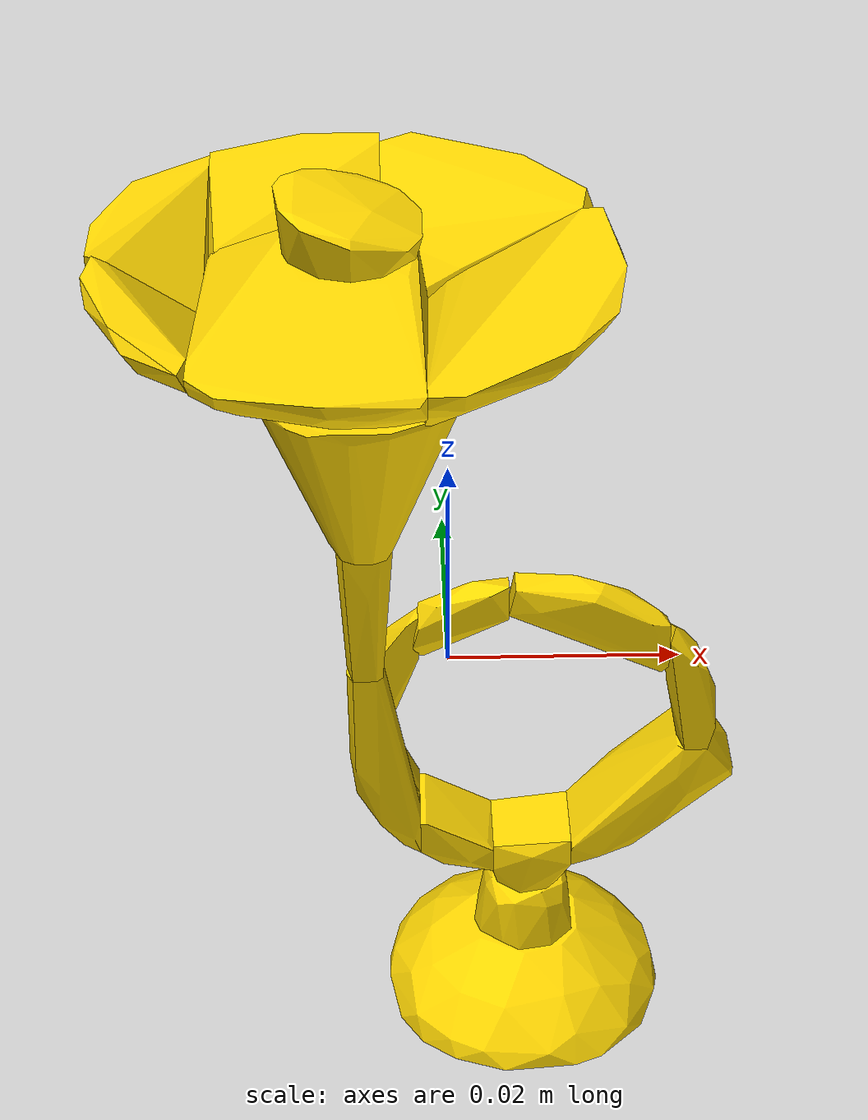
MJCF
<mujoco model="shapenetsem18">
  <asset>
    <mesh file="meshes/shapenetsem18/shapenetsem18_0.stl" name="shapenetsem18_0" scale="1 1 1"/>
    <mesh file="meshes/shapenetsem18/shapenetsem18_1.stl" name="shapenetsem18_1" scale="1 1 1"/>
    <mesh file="meshes/shapenetsem18/shapenetsem18_2.stl" name="shapenetsem18_2" scale="1 1 1"/>
    <mesh file="meshes/shapenetsem18/shapenetsem18_3.stl" name="shapenetsem18_3" scale="1 1 1"/>
    <mesh file="meshes/shapenetsem18/shapenetsem18_4.stl" name="shapenetsem18_4" scale="1 1 1"/>
    <mesh file="meshes/shapenetsem18/shapenetsem18_5.stl" name="shapenetsem18_5" scale="1 1 1"/>
    <mesh file="meshes/shapenetsem18/shapenetsem18_6.stl" name="shapenetsem18_6" scale="1 1 1"/>
    <mesh file="meshes/shapenetsem18/shapenetsem18_7.stl" name="shapenetsem18_7" scale="1 1 1"/>
    <mesh file="meshes/shapenetsem18/shapenetsem18_8.stl" name="shapenetsem18_8" scale="1 1 1"/>
    <mesh file="meshes/shapenetsem18/shapenetsem18_9.stl" name="shapenetsem18_9" scale="1 1 1"/>
    <mesh file="meshes/shapenetsem18/shapenetsem18_10.stl" name="shapenetsem18_10" scale="1 1 1"/>
    <mesh file="meshes/shapenetsem18/shapenetsem18_11.stl" name="shapenetsem18_11" scale="1 1 1"/>
    <mesh file="meshes/shapenetsem18/shapenetsem18_12.stl" name="shapenetsem18_12" scale="1 1 1"/>
    <mesh file="meshes/shapenetsem18/shapenetsem18_13.stl" name="shapenetsem18_13" scale="1 1 1"/>
    <mesh file="meshes/shapenetsem18/shapenetsem18_14.stl" name="shapenetsem18_14" scale="1 1 1"/>
    <mesh file="meshes/shapenetsem18/shapenetsem18_15.stl" name="shapenetsem18_15" scale="1 1 1"/>
    <mesh file="meshes/shapenetsem18/shapenetsem18_16.stl" name="shapenetsem18_16" scale="1 1 1"/>
    <mesh file="meshes/shapenetsem18/shapenetsem18_17.stl" name="shapenetsem18_17" scale="1 1 1"/>
    <mesh file="meshes/shapenetsem18/shapenetsem18_18.stl" name="shapenetsem18_18" scale="1 1 1"/>
    <mesh file="meshes/shapenetsem18/shapenetsem18_19.stl" name="shapenetsem18_19" scale="1 1 1"/>
    <texture file="../textures/texture18-0.png" type="2d" name="tex-sem18"/>
    <material name="sem18" reflectance="0.7" texrepeat="90 90" texture="tex-sem18" texuniform="true"/>
  </asset>
  <worldbody>
    <body>
      <body name="collision">
        <geom pos="0 0 0" mesh="shapenetsem18_0" type="mesh" solimp="0.998 0.998 0.001" solref="0.001 1" density="100" friction="0.95 0.3 0.1" rgba="1. 0.843 0 1" group="1" condim="4"/>
        <geom pos="0 0 0" mesh="shapenetsem18_1" type="mesh" solimp="0.998 0.998 0.001" solref="0.001 1" density="100" friction="0.95 0.3 0.1" rgba="1. 0.843 0 1" group="1" condim="4"/>
        <geom pos="0 0 0" mesh="shapenetsem18_2" type="mesh" solimp="0.998 0.998 0.001" solref="0.001 1" density="100" friction="0.95 0.3 0.1" rgba="1. 0.843 0 1" group="1" condim="4"/>
        <geom pos="0 0 0" mesh="shapenetsem18_3" type="mesh" solimp="0.998 0.998 0.001" solref="0.001 1" density="100" friction="0.95 0.3 0.1" rgba="1. 0.843 0 1" group="1" condim="4"/>
        <geom pos="0 0 0" mesh="shapenetsem18_4" type="mesh" solimp="0.998 0.998 0.001" solref="0.001 1" density="100" friction="0.95 0.3 0.1" rgba="1. 0.843 0 1" group="1" condim="4"/>
        <geom pos="0 0 0" mesh="shapenetsem18_5" type="mesh" solimp="0.998 0.998 0.001" solref="0.001 1" density="100" friction="0.95 0.3 0.1" rgba="1. 0.843 0 1" group="1" condim="4"/>
        <geom pos="0 0 0" mesh="shapenetsem18_6" type="mesh" solimp="0.998 0.998 0.001" solref="0.001 1" density="100" friction="0.95 0.3 0.1" rgba="1. 0.843 0 1" group="1" condim="4"/>
        <geom pos="0 0 0" mesh="shapenetsem18_7" type="mesh" solimp="0.998 0.998 0.001" solref="0.001 1" density="100" friction="0.95 0.3 0.1" rgba="1. 0.843 0 1" group="1" condim="4"/>
        <geom pos="0 0 0" mesh="shapenetsem18_8" type="mesh" solimp="0.998 0.998 0.001" solref="0.001 1" density="100" friction="0.95 0.3 0.1" rgba="1. 0.843 0 1" group="1" condim="4"/>
        <geom pos="0 0 0" mesh="shapenetsem18_9" type="mesh" solimp="0.998 0.998 0.001" solref="0.001 1" density="100" friction="0.95 0.3 0.1" rgba="1. 0.843 0 1" group="1" condim="4"/>
        <geom pos="0 0 0" mesh="shapenetsem18_10" type="mesh" solimp="0.998 0.998 0.001" solref="0.001 1" density="100" friction="0.95 0.3 0.1" rgba="1. 0.843 0 1" group="1" condim="4"/>
        <geom pos="0 0 0" mesh="shapenetsem18_11" type="mesh" solimp="0.998 0.998 0.001" solref="0.001 1" density="100" friction="0.95 0.3 0.1" rgba="1. 0.843 0 1" group="1" condim="4"/>
        <geom pos="0 0 0" mesh="shapenetsem18_12" type="mesh" solimp="0.998 0.998 0.001" solref="0.001 1" density="100" friction="0.95 0.3 0.1" rgba="1. 0.843 0 1" group="1" condim="4"/>
        <geom pos="0 0 0" mesh="shapenetsem18_13" type="mesh" solimp="0.998 0.998 0.001" solref="0.001 1" density="100" friction="0.95 0.3 0.1" rgba="1. 0.843 0 1" group="1" condim="4"/>
        <geom pos="0 0 0" mesh="shapenetsem18_14" type="mesh" solimp="0.998 0.998 0.001" solref="0.001 1" density="100" friction="0.95 0.3 0.1" rgba="1. 0.843 0 1" group="1" condim="4"/>
        <geom pos="0 0 0" mesh="shapenetsem18_15" type="mesh" solimp="0.998 0.998 0.001" solref="0.001 1" density="100" friction="0.95 0.3 0.1" rgba="1. 0.843 0 1" group="1" condim="4"/>
        <geom pos="0 0 0" mesh="shapenetsem18_16" type="mesh" solimp="0.998 0.998 0.001" solref="0.001 1" density="100" friction="0.95 0.3 0.1" rgba="1. 0.843 0 1" group="1" condim="4"/>
        <geom pos="0 0 0" mesh="shapenetsem18_17" type="mesh" solimp="0.998 0.998 0.001" solref="0.001 1" density="100" friction="0.95 0.3 0.1" rgba="1. 0.843 0 1" group="1" condim="4"/>
        <geom pos="0 0 0" mesh="shapenetsem18_18" type="mesh" solimp="0.998 0.998 0.001" solref="0.001 1" density="100" friction="0.95 0.3 0.1" rgba="1. 0.843 0 1" group="1" condim="4"/>
        <geom pos="0 0 0" mesh="shapenetsem18_19" type="mesh" solimp="0.998 0.998 0.001" solref="0.001 1" density="100" friction="0.95 0.3 0.1" rgba="1. 0.843 0 1" group="1" condim="4"/>
      </body>
      <body name="visual">
        <geom pos="0 0 0" mesh="shapenetsem18_0" type="mesh" rgba="0 1 0 1" conaffinity="0" contype="0" group="0" mass="0.0001"/>
        <geom pos="0 0 0" mesh="shapenetsem18_1" type="mesh" rgba="0 1 0 1" conaffinity="0" contype="0" group="0" mass="0.0001"/>
        <geom pos="0 0 0" mesh="shapenetsem18_2" type="mesh" rgba="0 1 0 1" conaffinity="0" contype="0" group="0" mass="0.0001"/>
        <geom pos="0 0 0" mesh="shapenetsem18_3" type="mesh" rgba="0 1 0 1" conaffinity="0" contype="0" group="0" mass="0.0001"/>
        <geom pos="0 0 0" mesh="shapenetsem18_4" type="mesh" rgba="0 1 0 1" conaffinity="0" contype="0" group="0" mass="0.0001"/>
        <geom pos="0 0 0" mesh="shapenetsem18_5" type="mesh" rgba="0 1 0 1" conaffinity="0" contype="0" group="0" mass="0.0001"/>
        <geom pos="0 0 0" mesh="shapenetsem18_6" type="mesh" rgba="0 1 0 1" conaffinity="0" contype="0" group="0" mass="0.0001"/>
        <geom pos="0 0 0" mesh="shapenetsem18_7" type="mesh" rgba="0 1 0 1" conaffinity="0" contype="0" group="0" mass="0.0001"/>
        <geom pos="0 0 0" mesh="shapenetsem18_8" type="mesh" rgba="0 1 0 1" conaffinity="0" contype="0" group="0" mass="0.0001"/>
        <geom pos="0 0 0" mesh="shapenetsem18_9" type="mesh" rgba="0 1 0 1" conaffinity="0" contype="0" group="0" mass="0.0001"/>
        <geom pos="0 0 0" mesh="shapenetsem18_10" type="mesh" rgba="0 1 0 1" conaffinity="0" contype="0" group="0" mass="0.0001"/>
        <geom pos="0 0 0" mesh="shapenetsem18_11" type="mesh" rgba="0 1 0 1" conaffinity="0" contype="0" group="0" mass="0.0001"/>
        <geom pos="0 0 0" mesh="shapenetsem18_12" type="mesh" rgba="0 1 0 1" conaffinity="0" contype="0" group="0" mass="0.0001"/>
        <geom pos="0 0 0" mesh="shapenetsem18_13" type="mesh" rgba="0 1 0 1" conaffinity="0" contype="0" group="0" mass="0.0001"/>
        <geom pos="0 0 0" mesh="shapenetsem18_14" type="mesh" rgba="0 1 0 1" conaffinity="0" contype="0" group="0" mass="0.0001"/>
        <geom pos="0 0 0" mesh="shapenetsem18_15" type="mesh" rgba="0 1 0 1" conaffinity="0" contype="0" group="0" mass="0.0001"/>
        <geom pos="0 0 0" mesh="shapenetsem18_16" type="mesh" rgba="0 1 0 1" conaffinity="0" contype="0" group="0" mass="0.0001"/>
        <geom pos="0 0 0" mesh="shapenetsem18_17" type="mesh" rgba="0 1 0 1" conaffinity="0" contype="0" group="0" mass="0.0001"/>
        <geom pos="0 0 0" mesh="shapenetsem18_18" type="mesh" rgba="0 1 0 1" conaffinity="0" contype="0" group="0" mass="0.0001"/>
        <geom pos="0 0 0" mesh="shapenetsem18_19" type="mesh" rgba="0 1 0 1" conaffinity="0" contype="0" group="0" mass="0.0001"/>
      </body>
      <site rgba="0 0 0 0" size="0.005" pos="0 0 -0.06" name="bottom_site"/>
      <site rgba="0 0 0 0" size="0.005" pos="0 0 0.04" name="top_site"/>
      <site rgba="0 0 0 0" size="0.005" pos="0.025 0.025 0" name="horizontal_radius_site"/>
    </body>
  </worldbody>
</mujoco>
